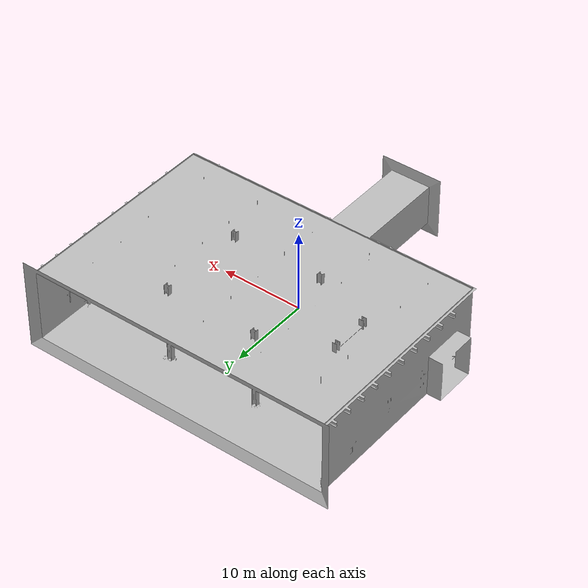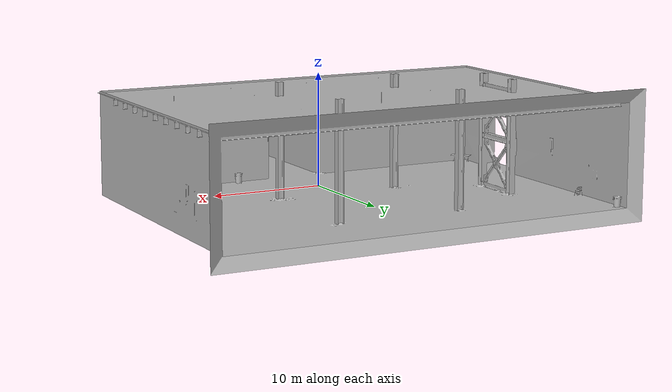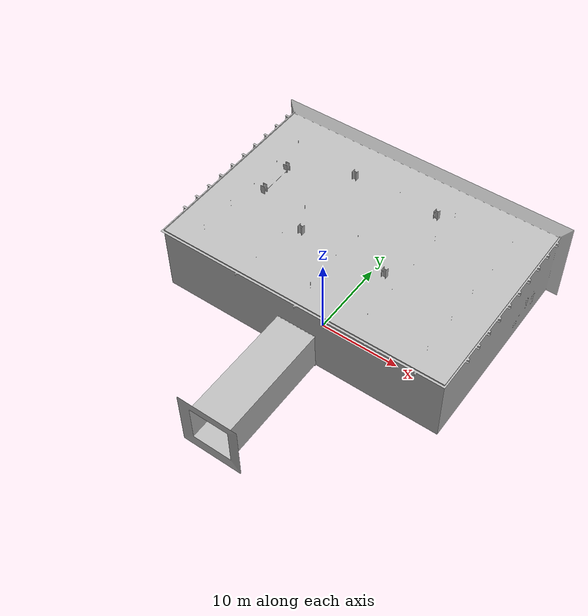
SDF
<?xml version="1.0"?>
<sdf version="1.6">
    <model name="Urban Large Room Split">
        <static>true</static>
        <link name="base_link">
            <collision name="collision">
                <pose>0 0 0 0 0 0</pose>
                <geometry>
                    <mesh>
                        <uri>meshes/large_room_split.dae</uri>
                        <scale>1.0 1.0 1.0</scale>
                    </mesh>
                </geometry>
            </collision>
						<visual name="visual">
                <pose>0 0 0 0 0 0</pose>
                <geometry>
                    <mesh>
                        <uri>meshes/large_room_split.dae</uri>
                        <scale>1.0 1.0 1.0</scale>
                    </mesh>
                </geometry>
            </visual>
        </link>
        <plugin filename="libignition-gazebo-performer-detector-system.so" name="ignition::gazebo::systems::PerformerDetector">
            <topic>/subt_performer_detector</topic>
            <pose>-7 -1 5 0 0 0</pose>
            <geometry>
                <box>
                    <size>25 8 10</size>
                </box>
            </geometry>
            <header_data>
                <key>type</key>
                <value>decision</value>
            </header_data>
        </plugin>
    </model>
</sdf>
